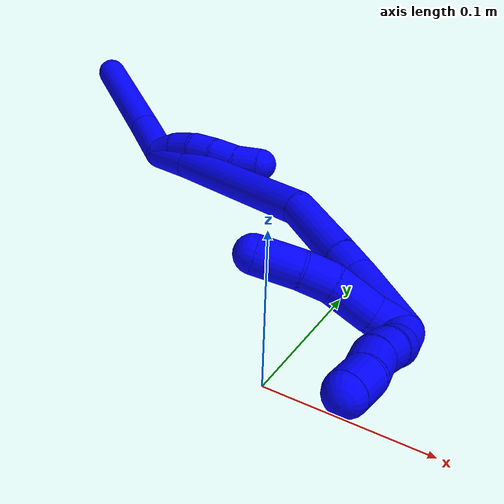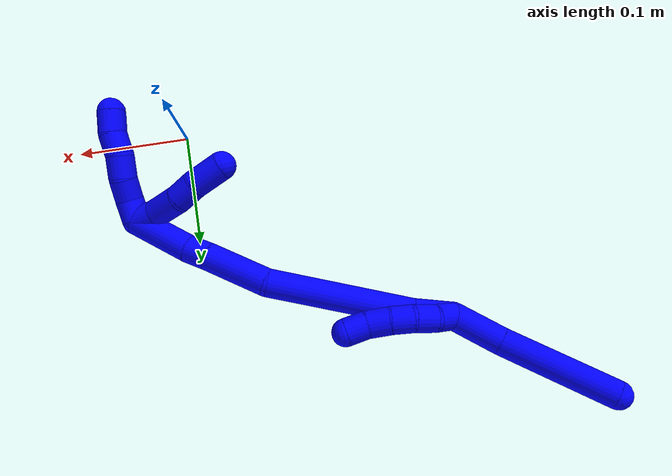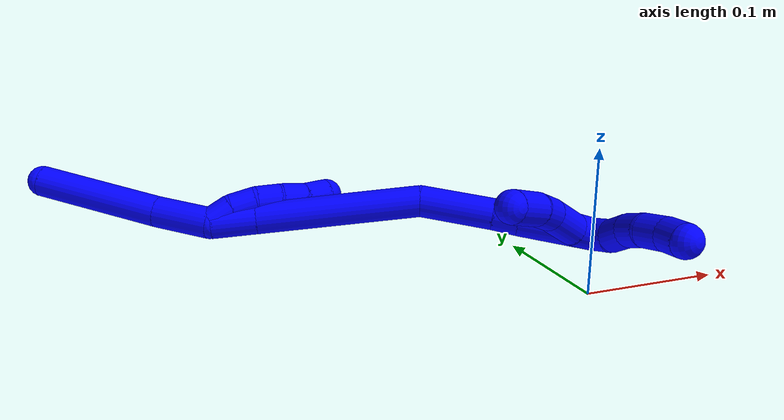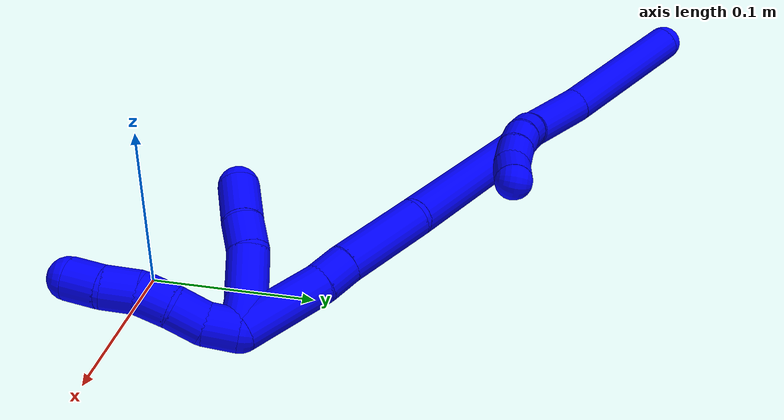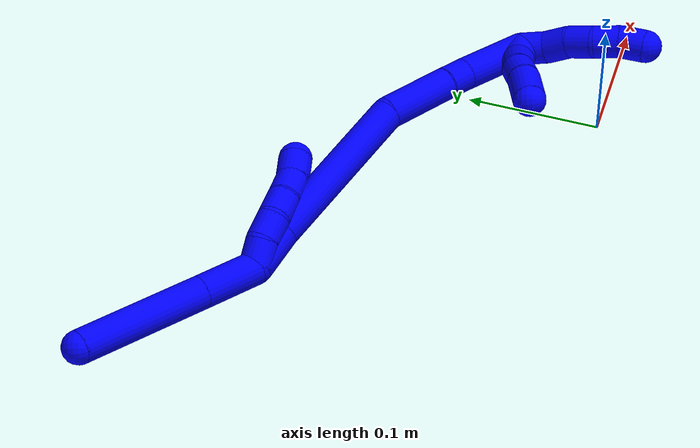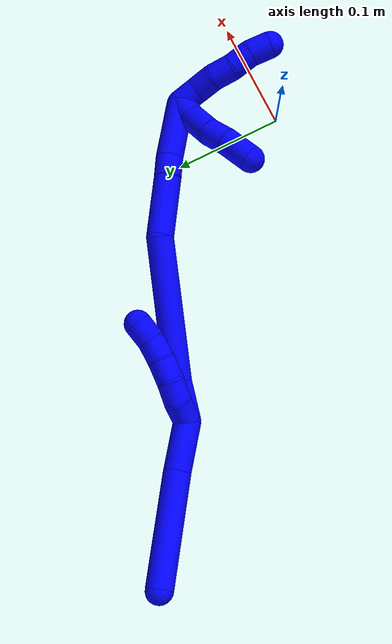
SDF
<sdf version="1.7">
 <world name="default">
  <model name="1">
   <static>0</static>
   <link name="1">
    <collision name="collision-cylinder-e_1_2_8">
     <pose>-0.01494 0.007499 0.016142 -0.434914 -0.698305 0.160537</pose>
     <geometry><cylinder><radius>0.0125</radius><length>0.046475</length></cylinder></geometry>
     <surface>
      <friction><ode><mu>1.16</mu><mu2>1.16</mu2><slip1>0</slip1><slip2>0</slip2></ode></friction>
      <contact><ode><kp>1e+06</kp><kd>1</kd><max_vel>0</max_vel><min_depth>0.001</min_depth></ode></contact>
     </surface>
    </collision>
    <visual name="visual-cylinder-e_1_2_8">
     <pose>-0.01494 0.007499 0.016142 -0.434914 -0.698305 0.160537</pose>
     <geometry><cylinder><radius>0.0125</radius><length>0.046475</length></cylinder></geometry>
     <material><ambient>0 0 1 1</ambient></material>
    </visual>
    <collision name="collision-cylinder-e_2_8_6">
     <pose>-0.066323 0.03062 0.065558 -0.438921 -0.781076 0.183141</pose>
     <geometry><cylinder><radius>0.0125</radius><length>0.103525</length></cylinder></geometry>
     <surface>
      <friction><ode><mu>1.16</mu><mu2>1.16</mu2><slip1>0</slip1><slip2>0</slip2></ode></friction>
      <contact><ode><kp>1e+06</kp><kd>1</kd><max_vel>0</max_vel><min_depth>0.001</min_depth></ode></contact>
     </surface>
    </collision>
    <visual name="visual-cylinder-e_2_8_6">
     <pose>-0.066323 0.03062 0.065558 -0.438921 -0.781076 0.183141</pose>
     <geometry><cylinder><radius>0.0125</radius><length>0.103525</length></cylinder></geometry>
     <material><ambient>0 0 1 1</ambient></material>
    </visual>
    <collision name="collision-cylinder-e_1_2_9">
     <pose>0.002755 -0.009342 -0.002268 1.80896 0.279113 0.353573</pose>
     <geometry><cylinder><radius>0.0125</radius><length>0.02</length></cylinder></geometry>
     <surface>
      <friction><ode><mu>1.16</mu><mu2>1.16</mu2><slip1>0</slip1><slip2>0</slip2></ode></friction>
      <contact><ode><kp>1e+06</kp><kd>1</kd><max_vel>0</max_vel><min_depth>0.001</min_depth></ode></contact>
     </surface>
    </collision>
    <visual name="visual-cylinder-e_1_2_9">
     <pose>0.002755 -0.009342 -0.002268 1.80896 0.279113 0.353573</pose>
     <geometry><cylinder><radius>0.0125</radius><length>0.02</length></cylinder></geometry>
     <material><ambient>0 0 1 1</ambient></material>
    </visual>
    <collision name="collision-cylinder-e_2_9_10">
     <pose>0.010499 -0.026745 -0.007718 1.94672 0.522304 0.748573</pose>
     <geometry><cylinder><radius>0.0125</radius><length>0.02</length></cylinder></geometry>
     <surface>
      <friction><ode><mu>1.16</mu><mu2>1.16</mu2><slip1>0</slip1><slip2>0</slip2></ode></friction>
      <contact><ode><kp>1e+06</kp><kd>1</kd><max_vel>0</max_vel><min_depth>0.001</min_depth></ode></contact>
     </surface>
    </collision>
    <visual name="visual-cylinder-e_2_9_10">
     <pose>0.010499 -0.026745 -0.007718 1.94672 0.522304 0.748573</pose>
     <geometry><cylinder><radius>0.0125</radius><length>0.02</length></cylinder></geometry>
     <material><ambient>0 0 1 1</ambient></material>
    </visual>
    <collision name="collision-cylinder-e_3_10_11">
     <pose>0.022266 -0.041804 -0.013153 1.88237 0.74488 0.984459</pose>
     <geometry><cylinder><radius>0.0125</radius><length>0.02</length></cylinder></geometry>
     <surface>
      <friction><ode><mu>1.16</mu><mu2>1.16</mu2><slip1>0</slip1><slip2>0</slip2></ode></friction>
      <contact><ode><kp>1e+06</kp><kd>1</kd><max_vel>0</max_vel><min_depth>0.001</min_depth></ode></contact>
     </surface>
    </collision>
    <visual name="visual-cylinder-e_3_10_11">
     <pose>0.022266 -0.041804 -0.013153 1.88237 0.74488 0.984459</pose>
     <geometry><cylinder><radius>0.0125</radius><length>0.02</length></cylinder></geometry>
     <material><ambient>0 0 1 1</ambient></material>
    </visual>
    <collision name="collision-cylinder-e_4_11_12">
     <pose>0.036652 -0.055152 -0.016757 1.78031 0.864291 1.03554</pose>
     <geometry><cylinder><radius>0.0125</radius><length>0.02</length></cylinder></geometry>
     <surface>
      <friction><ode><mu>1.16</mu><mu2>1.16</mu2><slip1>0</slip1><slip2>0</slip2></ode></friction>
      <contact><ode><kp>1e+06</kp><kd>1</kd><max_vel>0</max_vel><min_depth>0.001</min_depth></ode></contact>
     </surface>
    </collision>
    <visual name="visual-cylinder-e_4_11_12">
     <pose>0.036652 -0.055152 -0.016757 1.78031 0.864291 1.03554</pose>
     <geometry><cylinder><radius>0.0125</radius><length>0.02</length></cylinder></geometry>
     <material><ambient>0 0 1 1</ambient></material>
    </visual>
    <collision name="collision-cylinder-e_5_12_5">
     <pose>0.050883 -0.068984 -0.017762 1.52475 0.724205 0.694211</pose>
     <geometry><cylinder><radius>0.0125</radius><length>0.02</length></cylinder></geometry>
     <surface>
      <friction><ode><mu>1.16</mu><mu2>1.16</mu2><slip1>0</slip1><slip2>0</slip2></ode></friction>
      <contact><ode><kp>1e+06</kp><kd>1</kd><max_vel>0</max_vel><min_depth>0.001</min_depth></ode></contact>
     </surface>
    </collision>
    <visual name="visual-cylinder-e_5_12_5">
     <pose>0.050883 -0.068984 -0.017762 1.52475 0.724205 0.694211</pose>
     <geometry><cylinder><radius>0.0125</radius><length>0.02</length></cylinder></geometry>
     <material><ambient>0 0 1 1</ambient></material>
    </visual>
    <collision name="collision-cylinder-e_1_2_13">
     <pose>0.011467 -0.012078 -0.007174 2.10675 0.684592 1.11873</pose>
     <geometry><cylinder><radius>0.0125</radius><length>0.036268</length></cylinder></geometry>
     <surface>
      <friction><ode><mu>1.16</mu><mu2>1.16</mu2><slip1>0</slip1><slip2>0</slip2></ode></friction>
      <contact><ode><kp>1e+06</kp><kd>1</kd><max_vel>0</max_vel><min_depth>0.001</min_depth></ode></contact>
     </surface>
    </collision>
    <visual name="visual-cylinder-e_1_2_13">
     <pose>0.011467 -0.012078 -0.007174 2.10675 0.684592 1.11873</pose>
     <geometry><cylinder><radius>0.0125</radius><length>0.036268</length></cylinder></geometry>
     <material><ambient>0 0 1 1</ambient></material>
    </visual>
    <collision name="collision-cylinder-e_2_13_14">
     <pose>0.06112 -0.065882 -0.046494 2.22725 0.627287 1.16582</pose>
     <geometry><cylinder><radius>0.0125</radius><length>0.130117</length></cylinder></geometry>
     <surface>
      <friction><ode><mu>1.16</mu><mu2>1.16</mu2><slip1>0</slip1><slip2>0</slip2></ode></friction>
      <contact><ode><kp>1e+06</kp><kd>1</kd><max_vel>0</max_vel><min_depth>0.001</min_depth></ode></contact>
     </surface>
    </collision>
    <visual name="visual-cylinder-e_2_13_14">
     <pose>0.06112 -0.065882 -0.046494 2.22725 0.627287 1.16582</pose>
     <geometry><cylinder><radius>0.0125</radius><length>0.130117</length></cylinder></geometry>
     <material><ambient>0 0 1 1</ambient></material>
    </visual>
    <collision name="collision-cylinder-e_3_14_15">
     <pose>0.118866 -0.118114 -0.097045 2.62286 0.745375 1.94901</pose>
     <geometry><cylinder><radius>0.0125</radius><length>0.057678</length></cylinder></geometry>
     <surface>
      <friction><ode><mu>1.16</mu><mu2>1.16</mu2><slip1>0</slip1><slip2>0</slip2></ode></friction>
      <contact><ode><kp>1e+06</kp><kd>1</kd><max_vel>0</max_vel><min_depth>0.001</min_depth></ode></contact>
     </surface>
    </collision>
    <visual name="visual-cylinder-e_3_14_15">
     <pose>0.118866 -0.118114 -0.097045 2.62286 0.745375 1.94901</pose>
     <geometry><cylinder><radius>0.0125</radius><length>0.057678</length></cylinder></geometry>
     <material><ambient>0 0 1 1</ambient></material>
    </visual>
    <collision name="collision-cylinder-e_4_15_16">
     <pose>0.145834 -0.131995 -0.121399 2.62565 0.825182 2.05665</pose>
     <geometry><cylinder><radius>0.0125</radius><length>0.020167</length></cylinder></geometry>
     <surface>
      <friction><ode><mu>1.16</mu><mu2>1.16</mu2><slip1>0</slip1><slip2>0</slip2></ode></friction>
      <contact><ode><kp>1e+06</kp><kd>1</kd><max_vel>0</max_vel><min_depth>0.001</min_depth></ode></contact>
     </surface>
    </collision>
    <visual name="visual-cylinder-e_4_15_16">
     <pose>0.145834 -0.131995 -0.121399 2.62565 0.825182 2.05665</pose>
     <geometry><cylinder><radius>0.0125</radius><length>0.020167</length></cylinder></geometry>
     <material><ambient>0 0 1 1</ambient></material>
    </visual>
    <collision name="collision-cylinder-e_5_16_1">
     <pose>0.171236 -0.144653 -0.146524 2.69072 0.701366 2.02162</pose>
     <geometry><cylinder><radius>0.0125</radius><length>0.05577</length></cylinder></geometry>
     <surface>
      <friction><ode><mu>1.16</mu><mu2>1.16</mu2><slip1>0</slip1><slip2>0</slip2></ode></friction>
      <contact><ode><kp>1e+06</kp><kd>1</kd><max_vel>0</max_vel><min_depth>0.001</min_depth></ode></contact>
     </surface>
    </collision>
    <visual name="visual-cylinder-e_5_16_1">
     <pose>0.171236 -0.144653 -0.146524 2.69072 0.701366 2.02162</pose>
     <geometry><cylinder><radius>0.0125</radius><length>0.05577</length></cylinder></geometry>
     <material><ambient>0 0 1 1</ambient></material>
    </visual>
    <collision name="collision-cylinder-e_1_1_17">
     <pose>0.189069 -0.154071 -0.175696 3.12806 -0.016016 -1.73847</pose>
     <geometry><cylinder><radius>0.0125</radius><length>0.02</length></cylinder></geometry>
     <surface>
      <friction><ode><mu>1.16</mu><mu2>1.16</mu2><slip1>0</slip1><slip2>0</slip2></ode></friction>
      <contact><ode><kp>1e+06</kp><kd>1</kd><max_vel>0</max_vel><min_depth>0.001</min_depth></ode></contact>
     </surface>
    </collision>
    <visual name="visual-cylinder-e_1_1_17">
     <pose>0.189069 -0.154071 -0.175696 3.12806 -0.016016 -1.73847</pose>
     <geometry><cylinder><radius>0.0125</radius><length>0.02</length></cylinder></geometry>
     <material><ambient>0 0 1 1</ambient></material>
    </visual>
    <collision name="collision-cylinder-e_2_17_18">
     <pose>0.186061 -0.155743 -0.195156 2.98059 -0.288798 -2.12856</pose>
     <geometry><cylinder><radius>0.0125</radius><length>0.02</length></cylinder></geometry>
     <surface>
      <friction><ode><mu>1.16</mu><mu2>1.16</mu2><slip1>0</slip1><slip2>0</slip2></ode></friction>
      <contact><ode><kp>1e+06</kp><kd>1</kd><max_vel>0</max_vel><min_depth>0.001</min_depth></ode></contact>
     </surface>
    </collision>
    <visual name="visual-cylinder-e_2_17_18">
     <pose>0.186061 -0.155743 -0.195156 2.98059 -0.288798 -2.12856</pose>
     <geometry><cylinder><radius>0.0125</radius><length>0.02</length></cylinder></geometry>
     <material><ambient>0 0 1 1</ambient></material>
    </visual>
    <collision name="collision-cylinder-e_3_18_19">
     <pose>0.180879 -0.156662 -0.214322 -3.07801 -0.23553 2.61639</pose>
     <geometry><cylinder><radius>0.0125</radius><length>0.02</length></cylinder></geometry>
     <surface>
      <friction><ode><mu>1.16</mu><mu2>1.16</mu2><slip1>0</slip1><slip2>0</slip2></ode></friction>
      <contact><ode><kp>1e+06</kp><kd>1</kd><max_vel>0</max_vel><min_depth>0.001</min_depth></ode></contact>
     </surface>
    </collision>
    <visual name="visual-cylinder-e_3_18_19">
     <pose>0.180879 -0.156662 -0.214322 -3.07801 -0.23553 2.61639</pose>
     <geometry><cylinder><radius>0.0125</radius><length>0.02</length></cylinder></geometry>
     <material><ambient>0 0 1 1</ambient></material>
    </visual>
    <collision name="collision-cylinder-e_4_19_20">
     <pose>0.178918 -0.1558 -0.234016 -3.11715 0.037283 -1.98113</pose>
     <geometry><cylinder><radius>0.0125</radius><length>0.02</length></cylinder></geometry>
     <surface>
      <friction><ode><mu>1.16</mu><mu2>1.16</mu2><slip1>0</slip1><slip2>0</slip2></ode></friction>
      <contact><ode><kp>1e+06</kp><kd>1</kd><max_vel>0</max_vel><min_depth>0.001</min_depth></ode></contact>
     </surface>
    </collision>
    <visual name="visual-cylinder-e_4_19_20">
     <pose>0.178918 -0.1558 -0.234016 -3.11715 0.037283 -1.98113</pose>
     <geometry><cylinder><radius>0.0125</radius><length>0.02</length></cylinder></geometry>
     <material><ambient>0 0 1 1</ambient></material>
    </visual>
    <collision name="collision-cylinder-e_5_20_4">
     <pose>0.178329 -0.153243 -0.253687 -2.90712 -0.096357 0.777149</pose>
     <geometry><cylinder><radius>0.0125</radius><length>0.02</length></cylinder></geometry>
     <surface>
      <friction><ode><mu>1.16</mu><mu2>1.16</mu2><slip1>0</slip1><slip2>0</slip2></ode></friction>
      <contact><ode><kp>1e+06</kp><kd>1</kd><max_vel>0</max_vel><min_depth>0.001</min_depth></ode></contact>
     </surface>
    </collision>
    <visual name="visual-cylinder-e_5_20_4">
     <pose>0.178329 -0.153243 -0.253687 -2.90712 -0.096357 0.777149</pose>
     <geometry><cylinder><radius>0.0125</radius><length>0.02</length></cylinder></geometry>
     <material><ambient>0 0 1 1</ambient></material>
    </visual>
    <collision name="collision-cylinder-e_1_1_21">
     <pose>0.180153 -0.149393 -0.166022 -1.64209 -1.10566 1.17042</pose>
     <geometry><cylinder><radius>0.0125</radius><length>0.020309</length></cylinder></geometry>
     <surface>
      <friction><ode><mu>1.16</mu><mu2>1.16</mu2><slip1>0</slip1><slip2>0</slip2></ode></friction>
      <contact><ode><kp>1e+06</kp><kd>1</kd><max_vel>0</max_vel><min_depth>0.001</min_depth></ode></contact>
     </surface>
    </collision>
    <visual name="visual-cylinder-e_1_1_21">
     <pose>0.180153 -0.149393 -0.166022 -1.64209 -1.10566 1.17042</pose>
     <geometry><cylinder><radius>0.0125</radius><length>0.020309</length></cylinder></geometry>
     <material><ambient>0 0 1 1</ambient></material>
    </visual>
    <collision name="collision-cylinder-e_2_21_22">
     <pose>0.15681 -0.140976 -0.168748 -2.12571 -1.26159 1.83907</pose>
     <geometry><cylinder><radius>0.0125</radius><length>0.029955</length></cylinder></geometry>
     <surface>
      <friction><ode><mu>1.16</mu><mu2>1.16</mu2><slip1>0</slip1><slip2>0</slip2></ode></friction>
      <contact><ode><kp>1e+06</kp><kd>1</kd><max_vel>0</max_vel><min_depth>0.001</min_depth></ode></contact>
     </surface>
    </collision>
    <visual name="visual-cylinder-e_2_21_22">
     <pose>0.15681 -0.140976 -0.168748 -2.12571 -1.26159 1.83907</pose>
     <geometry><cylinder><radius>0.0125</radius><length>0.029955</length></cylinder></geometry>
     <material><ambient>0 0 1 1</ambient></material>
    </visual>
    <collision name="collision-cylinder-e_3_22_23">
     <pose>0.133902 -0.13299 -0.174631 -2.27327 -1.01323 1.74949</pose>
     <geometry><cylinder><radius>0.0125</radius><length>0.020367</length></cylinder></geometry>
     <surface>
      <friction><ode><mu>1.16</mu><mu2>1.16</mu2><slip1>0</slip1><slip2>0</slip2></ode></friction>
      <contact><ode><kp>1e+06</kp><kd>1</kd><max_vel>0</max_vel><min_depth>0.001</min_depth></ode></contact>
     </surface>
    </collision>
    <visual name="visual-cylinder-e_3_22_23">
     <pose>0.133902 -0.13299 -0.174631 -2.27327 -1.01323 1.74949</pose>
     <geometry><cylinder><radius>0.0125</radius><length>0.020367</length></cylinder></geometry>
     <material><ambient>0 0 1 1</ambient></material>
    </visual>
    <collision name="collision-cylinder-e_4_23_3">
     <pose>0.113487 -0.120982 -0.181944 -2.02257 -0.930271 1.35113</pose>
     <geometry><cylinder><radius>0.0125</radius><length>0.029369</length></cylinder></geometry>
     <surface>
      <friction><ode><mu>1.16</mu><mu2>1.16</mu2><slip1>0</slip1><slip2>0</slip2></ode></friction>
      <contact><ode><kp>1e+06</kp><kd>1</kd><max_vel>0</max_vel><min_depth>0.001</min_depth></ode></contact>
     </surface>
    </collision>
    <visual name="visual-cylinder-e_4_23_3">
     <pose>0.113487 -0.120982 -0.181944 -2.02257 -0.930271 1.35113</pose>
     <geometry><cylinder><radius>0.0125</radius><length>0.029369</length></cylinder></geometry>
     <material><ambient>0 0 1 1</ambient></material>
    </visual>
    <collision name="collision-sphere-3">
     <pose>0.101713 -0.113086 -0.185775 0 -0 0</pose>
     <geometry><sphere><radius>0.0125</radius></sphere></geometry>
     <surface>
      <friction><ode><mu>1.16</mu><mu2>1.16</mu2><slip1>0</slip1><slip2>0</slip2></ode></friction>
      <contact><ode><kp>1e+06</kp><kd>1</kd><max_vel>0</max_vel><min_depth>0.001</min_depth></ode></contact>
     </surface>
    </collision>
    <visual name="visual-sphere-3">
     <pose>0.101713 -0.113086 -0.185775 0 -0 0</pose>
     <geometry><sphere><radius>0.0125</radius></sphere></geometry>
     <material><ambient>0 0 1 1</ambient></material>
    </visual>
    <collision name="collision-sphere-23">
     <pose>0.125261 -0.128877 -0.178112 0 -0 0</pose>
     <geometry><sphere><radius>0.0125</radius></sphere></geometry>
     <surface>
      <friction><ode><mu>1.16</mu><mu2>1.16</mu2><slip1>0</slip1><slip2>0</slip2></ode></friction>
      <contact><ode><kp>1e+06</kp><kd>1</kd><max_vel>0</max_vel><min_depth>0.001</min_depth></ode></contact>
     </surface>
    </collision>
    <visual name="visual-sphere-23">
     <pose>0.125261 -0.128877 -0.178112 0 -0 0</pose>
     <geometry><sphere><radius>0.0125</radius></sphere></geometry>
     <material><ambient>0 0 1 1</ambient></material>
    </visual>
    <collision name="collision-sphere-22">
     <pose>0.142543 -0.137102 -0.171149 0 -0 0</pose>
     <geometry><sphere><radius>0.0125</radius></sphere></geometry>
     <surface>
      <friction><ode><mu>1.16</mu><mu2>1.16</mu2><slip1>0</slip1><slip2>0</slip2></ode></friction>
      <contact><ode><kp>1e+06</kp><kd>1</kd><max_vel>0</max_vel><min_depth>0.001</min_depth></ode></contact>
     </surface>
    </collision>
    <visual name="visual-sphere-22">
     <pose>0.142543 -0.137102 -0.171149 0 -0 0</pose>
     <geometry><sphere><radius>0.0125</radius></sphere></geometry>
     <material><ambient>0 0 1 1</ambient></material>
    </visual>
    <collision name="collision-sphere-21">
     <pose>0.171077 -0.14485 -0.166347 0 -0 0</pose>
     <geometry><sphere><radius>0.0125</radius></sphere></geometry>
     <surface>
      <friction><ode><mu>1.16</mu><mu2>1.16</mu2><slip1>0</slip1><slip2>0</slip2></ode></friction>
      <contact><ode><kp>1e+06</kp><kd>1</kd><max_vel>0</max_vel><min_depth>0.001</min_depth></ode></contact>
     </surface>
    </collision>
    <visual name="visual-sphere-21">
     <pose>0.171077 -0.14485 -0.166347 0 -0 0</pose>
     <geometry><sphere><radius>0.0125</radius></sphere></geometry>
     <material><ambient>0 0 1 1</ambient></material>
    </visual>
    <collision name="collision-sphere-4">
     <pose>0.177367 -0.150931 -0.263369 0 -0 0</pose>
     <geometry><sphere><radius>0.0125</radius></sphere></geometry>
     <surface>
      <friction><ode><mu>1.16</mu><mu2>1.16</mu2><slip1>0</slip1><slip2>0</slip2></ode></friction>
      <contact><ode><kp>1e+06</kp><kd>1</kd><max_vel>0</max_vel><min_depth>0.001</min_depth></ode></contact>
     </surface>
    </collision>
    <visual name="visual-sphere-4">
     <pose>0.177367 -0.150931 -0.263369 0 -0 0</pose>
     <geometry><sphere><radius>0.0125</radius></sphere></geometry>
     <material><ambient>0 0 1 1</ambient></material>
    </visual>
    <collision name="collision-sphere-20">
     <pose>0.179291 -0.155556 -0.244006 0 -0 0</pose>
     <geometry><sphere><radius>0.0125</radius></sphere></geometry>
     <surface>
      <friction><ode><mu>1.16</mu><mu2>1.16</mu2><slip1>0</slip1><slip2>0</slip2></ode></friction>
      <contact><ode><kp>1e+06</kp><kd>1</kd><max_vel>0</max_vel><min_depth>0.001</min_depth></ode></contact>
     </surface>
    </collision>
    <visual name="visual-sphere-20">
     <pose>0.179291 -0.155556 -0.244006 0 -0 0</pose>
     <geometry><sphere><radius>0.0125</radius></sphere></geometry>
     <material><ambient>0 0 1 1</ambient></material>
    </visual>
    <collision name="collision-sphere-11">
     <pose>0.029045 -0.048802 -0.015407 0 -0 0</pose>
     <geometry><sphere><radius>0.0125</radius></sphere></geometry>
     <surface>
      <friction><ode><mu>1.16</mu><mu2>1.16</mu2><slip1>0</slip1><slip2>0</slip2></ode></friction>
      <contact><ode><kp>1e+06</kp><kd>1</kd><max_vel>0</max_vel><min_depth>0.001</min_depth></ode></contact>
     </surface>
    </collision>
    <visual name="visual-sphere-11">
     <pose>0.029045 -0.048802 -0.015407 0 -0 0</pose>
     <geometry><sphere><radius>0.0125</radius></sphere></geometry>
     <material><ambient>0 0 1 1</ambient></material>
    </visual>
    <collision name="collision-sphere-10">
     <pose>0.015488 -0.034806 -0.010899 0 -0 0</pose>
     <geometry><sphere><radius>0.0125</radius></sphere></geometry>
     <surface>
      <friction><ode><mu>1.16</mu><mu2>1.16</mu2><slip1>0</slip1><slip2>0</slip2></ode></friction>
      <contact><ode><kp>1e+06</kp><kd>1</kd><max_vel>0</max_vel><min_depth>0.001</min_depth></ode></contact>
     </surface>
    </collision>
    <visual name="visual-sphere-10">
     <pose>0.015488 -0.034806 -0.010899 0 -0 0</pose>
     <geometry><sphere><radius>0.0125</radius></sphere></geometry>
     <material><ambient>0 0 1 1</ambient></material>
    </visual>
    <collision name="collision-sphere-6">
     <pose>-0.102766 0.046241 0.098833 0 -0 0</pose>
     <geometry><sphere><radius>0.0125</radius></sphere></geometry>
     <surface>
      <friction><ode><mu>1.16</mu><mu2>1.16</mu2><slip1>0</slip1><slip2>0</slip2></ode></friction>
      <contact><ode><kp>1e+06</kp><kd>1</kd><max_vel>0</max_vel><min_depth>0.001</min_depth></ode></contact>
     </surface>
    </collision>
    <visual name="visual-sphere-6">
     <pose>-0.102766 0.046241 0.098833 0 -0 0</pose>
     <geometry><sphere><radius>0.0125</radius></sphere></geometry>
     <material><ambient>0 0 1 1</ambient></material>
    </visual>
    <collision name="collision-sphere-9">
     <pose>0.00551 -0.018683 -0.004536 0 -0 0</pose>
     <geometry><sphere><radius>0.0125</radius></sphere></geometry>
     <surface>
      <friction><ode><mu>1.16</mu><mu2>1.16</mu2><slip1>0</slip1><slip2>0</slip2></ode></friction>
      <contact><ode><kp>1e+06</kp><kd>1</kd><max_vel>0</max_vel><min_depth>0.001</min_depth></ode></contact>
     </surface>
    </collision>
    <visual name="visual-sphere-9">
     <pose>0.00551 -0.018683 -0.004536 0 -0 0</pose>
     <geometry><sphere><radius>0.0125</radius></sphere></geometry>
     <material><ambient>0 0 1 1</ambient></material>
    </visual>
    <collision name="collision-sphere-2">
     <geometry><sphere><radius>0.0125</radius></sphere></geometry>
     <surface>
      <friction><ode><mu>1.16</mu><mu2>1.16</mu2><slip1>0</slip1><slip2>0</slip2></ode></friction>
      <contact><ode><kp>1e+06</kp><kd>1</kd><max_vel>0</max_vel><min_depth>0.001</min_depth></ode></contact>
     </surface>
    </collision>
    <visual name="visual-sphere-2">
     <geometry><sphere><radius>0.0125</radius></sphere></geometry>
     <material><ambient>0 0 1 1</ambient></material>
    </visual>
    <collision name="collision-sphere-19">
     <pose>0.178545 -0.156044 -0.224026 0 -0 0</pose>
     <geometry><sphere><radius>0.0125</radius></sphere></geometry>
     <surface>
      <friction><ode><mu>1.16</mu><mu2>1.16</mu2><slip1>0</slip1><slip2>0</slip2></ode></friction>
      <contact><ode><kp>1e+06</kp><kd>1</kd><max_vel>0</max_vel><min_depth>0.001</min_depth></ode></contact>
     </surface>
    </collision>
    <visual name="visual-sphere-19">
     <pose>0.178545 -0.156044 -0.224026 0 -0 0</pose>
     <geometry><sphere><radius>0.0125</radius></sphere></geometry>
     <material><ambient>0 0 1 1</ambient></material>
    </visual>
    <collision name="collision-sphere-8">
     <pose>-0.02988 0.014998 0.032283 0 -0 0</pose>
     <geometry><sphere><radius>0.0125</radius></sphere></geometry>
     <surface>
      <friction><ode><mu>1.16</mu><mu2>1.16</mu2><slip1>0</slip1><slip2>0</slip2></ode></friction>
      <contact><ode><kp>1e+06</kp><kd>1</kd><max_vel>0</max_vel><min_depth>0.001</min_depth></ode></contact>
     </surface>
    </collision>
    <visual name="visual-sphere-8">
     <pose>-0.02988 0.014998 0.032283 0 -0 0</pose>
     <geometry><sphere><radius>0.0125</radius></sphere></geometry>
     <material><ambient>0 0 1 1</ambient></material>
    </visual>
    <collision name="collision-sphere-12">
     <pose>0.044258 -0.061501 -0.018107 0 -0 0</pose>
     <geometry><sphere><radius>0.0125</radius></sphere></geometry>
     <surface>
      <friction><ode><mu>1.16</mu><mu2>1.16</mu2><slip1>0</slip1><slip2>0</slip2></ode></friction>
      <contact><ode><kp>1e+06</kp><kd>1</kd><max_vel>0</max_vel><min_depth>0.001</min_depth></ode></contact>
     </surface>
    </collision>
    <visual name="visual-sphere-12">
     <pose>0.044258 -0.061501 -0.018107 0 -0 0</pose>
     <geometry><sphere><radius>0.0125</radius></sphere></geometry>
     <material><ambient>0 0 1 1</ambient></material>
    </visual>
    <collision name="collision-sphere-5">
     <pose>0.057509 -0.076466 -0.017418 0 -0 0</pose>
     <geometry><sphere><radius>0.0125</radius></sphere></geometry>
     <surface>
      <friction><ode><mu>1.16</mu><mu2>1.16</mu2><slip1>0</slip1><slip2>0</slip2></ode></friction>
      <contact><ode><kp>1e+06</kp><kd>1</kd><max_vel>0</max_vel><min_depth>0.001</min_depth></ode></contact>
     </surface>
    </collision>
    <visual name="visual-sphere-5">
     <pose>0.057509 -0.076466 -0.017418 0 -0 0</pose>
     <geometry><sphere><radius>0.0125</radius></sphere></geometry>
     <material><ambient>0 0 1 1</ambient></material>
    </visual>
    <collision name="collision-sphere-13">
     <pose>0.022934 -0.024156 -0.014347 0 -0 0</pose>
     <geometry><sphere><radius>0.0125</radius></sphere></geometry>
     <surface>
      <friction><ode><mu>1.16</mu><mu2>1.16</mu2><slip1>0</slip1><slip2>0</slip2></ode></friction>
      <contact><ode><kp>1e+06</kp><kd>1</kd><max_vel>0</max_vel><min_depth>0.001</min_depth></ode></contact>
     </surface>
    </collision>
    <visual name="visual-sphere-13">
     <pose>0.022934 -0.024156 -0.014347 0 -0 0</pose>
     <geometry><sphere><radius>0.0125</radius></sphere></geometry>
     <material><ambient>0 0 1 1</ambient></material>
    </visual>
    <collision name="collision-sphere-14">
     <pose>0.099306 -0.107607 -0.078641 0 -0 0</pose>
     <geometry><sphere><radius>0.0125</radius></sphere></geometry>
     <surface>
      <friction><ode><mu>1.16</mu><mu2>1.16</mu2><slip1>0</slip1><slip2>0</slip2></ode></friction>
      <contact><ode><kp>1e+06</kp><kd>1</kd><max_vel>0</max_vel><min_depth>0.001</min_depth></ode></contact>
     </surface>
    </collision>
    <visual name="visual-sphere-14">
     <pose>0.099306 -0.107607 -0.078641 0 -0 0</pose>
     <geometry><sphere><radius>0.0125</radius></sphere></geometry>
     <material><ambient>0 0 1 1</ambient></material>
    </visual>
    <collision name="collision-sphere-15">
     <pose>0.138426 -0.12862 -0.115449 0 -0 0</pose>
     <geometry><sphere><radius>0.0125</radius></sphere></geometry>
     <surface>
      <friction><ode><mu>1.16</mu><mu2>1.16</mu2><slip1>0</slip1><slip2>0</slip2></ode></friction>
      <contact><ode><kp>1e+06</kp><kd>1</kd><max_vel>0</max_vel><min_depth>0.001</min_depth></ode></contact>
     </surface>
    </collision>
    <visual name="visual-sphere-15">
     <pose>0.138426 -0.12862 -0.115449 0 -0 0</pose>
     <geometry><sphere><radius>0.0125</radius></sphere></geometry>
     <material><ambient>0 0 1 1</ambient></material>
    </visual>
    <collision name="collision-sphere-16">
     <pose>0.153243 -0.13537 -0.12735 0 -0 0</pose>
     <geometry><sphere><radius>0.0125</radius></sphere></geometry>
     <surface>
      <friction><ode><mu>1.16</mu><mu2>1.16</mu2><slip1>0</slip1><slip2>0</slip2></ode></friction>
      <contact><ode><kp>1e+06</kp><kd>1</kd><max_vel>0</max_vel><min_depth>0.001</min_depth></ode></contact>
     </surface>
    </collision>
    <visual name="visual-sphere-16">
     <pose>0.153243 -0.13537 -0.12735 0 -0 0</pose>
     <geometry><sphere><radius>0.0125</radius></sphere></geometry>
     <material><ambient>0 0 1 1</ambient></material>
    </visual>
    <collision name="collision-sphere-1">
     <pose>0.189229 -0.153936 -0.165698 0 -0 0</pose>
     <geometry><sphere><radius>0.0125</radius></sphere></geometry>
     <surface>
      <friction><ode><mu>1.16</mu><mu2>1.16</mu2><slip1>0</slip1><slip2>0</slip2></ode></friction>
      <contact><ode><kp>1e+06</kp><kd>1</kd><max_vel>0</max_vel><min_depth>0.001</min_depth></ode></contact>
     </surface>
    </collision>
    <visual name="visual-sphere-1">
     <pose>0.189229 -0.153936 -0.165698 0 -0 0</pose>
     <geometry><sphere><radius>0.0125</radius></sphere></geometry>
     <material><ambient>0 0 1 1</ambient></material>
    </visual>
    <collision name="collision-sphere-18">
     <pose>0.183213 -0.15728 -0.204617 0 -0 0</pose>
     <geometry><sphere><radius>0.0125</radius></sphere></geometry>
     <surface>
      <friction><ode><mu>1.16</mu><mu2>1.16</mu2><slip1>0</slip1><slip2>0</slip2></ode></friction>
      <contact><ode><kp>1e+06</kp><kd>1</kd><max_vel>0</max_vel><min_depth>0.001</min_depth></ode></contact>
     </surface>
    </collision>
    <visual name="visual-sphere-18">
     <pose>0.183213 -0.15728 -0.204617 0 -0 0</pose>
     <geometry><sphere><radius>0.0125</radius></sphere></geometry>
     <material><ambient>0 0 1 1</ambient></material>
    </visual>
    <collision name="collision-sphere-17">
     <pose>0.188909 -0.154207 -0.185694 0 -0 0</pose>
     <geometry><sphere><radius>0.0125</radius></sphere></geometry>
     <surface>
      <friction><ode><mu>1.16</mu><mu2>1.16</mu2><slip1>0</slip1><slip2>0</slip2></ode></friction>
      <contact><ode><kp>1e+06</kp><kd>1</kd><max_vel>0</max_vel><min_depth>0.001</min_depth></ode></contact>
     </surface>
    </collision>
    <visual name="visual-sphere-17">
     <pose>0.188909 -0.154207 -0.185694 0 -0 0</pose>
     <geometry><sphere><radius>0.0125</radius></sphere></geometry>
     <material><ambient>0 0 1 1</ambient></material>
    </visual>
    <inertial>
     <pose>0.07373 -0.074805 -0.073237 0 -0 0</pose>
     <mass>0.75</mass>
     <inertia>
      <ixx>0.000321</ixx>
      <ixy>0</ixy>
      <ixz>0</ixz>
      <iyy>0.000349</iyy>
      <iyz>0</iyz>
      <izz>3.2e-05</izz>
     </inertia>
    </inertial>
   </link>
   <pose>-0.214056 0.200167 0.011598 -1.85105 0.795202 -0.037376</pose>
  </model>
 </world>
</sdf>
